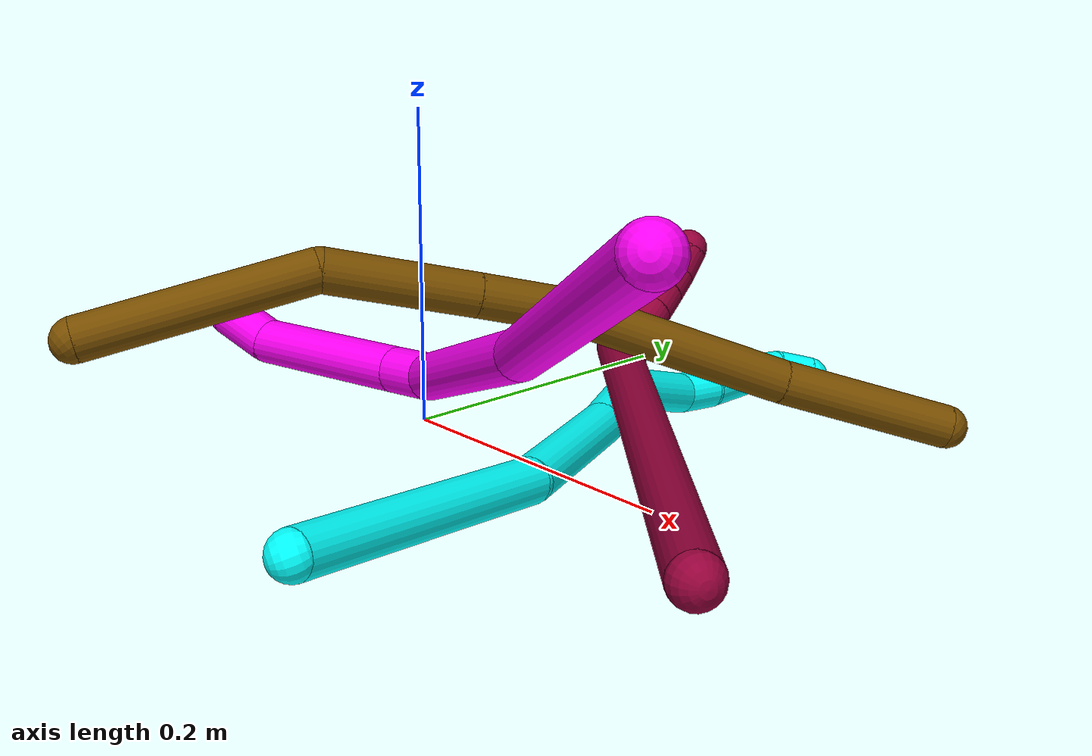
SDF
<sdf version="1.7">
 <world name="default">
  <model name="3">
   <static>0</static>
   <link name="3">
    <collision name="collision-cylinder-e_1_1_4">
     <pose>0.025781 0.053803 0.057916 -0.748597 0.315257 -0.124712</pose>
     <geometry><cylinder><radius>0.0125</radius><length>0.166297</length></cylinder></geometry>
     <surface>
      <friction><ode><mu>1.16</mu><mu2>1.16</mu2><slip1>0</slip1><slip2>0</slip2></ode></friction>
      <contact><ode><kp>1e+06</kp><kd>1</kd><max_vel>0</max_vel><min_depth>0.001</min_depth></ode></contact>
     </surface>
    </collision>
    <visual name="visual-cylinder-e_1_1_4">
     <pose>0.025781 0.053803 0.057916 -0.748597 0.315257 -0.124712</pose>
     <geometry><cylinder><radius>0.0125</radius><length>0.166297</length></cylinder></geometry>
     <material><ambient>0.003922 1 0.996078 1</ambient></material>
    </visual>
    <collision name="collision-cylinder-e_2_4_5">
     <pose>0.061353 0.151667 0.144162 -0.999385 0.184771 -0.101069</pose>
     <geometry><cylinder><radius>0.0125</radius><length>0.106579</length></cylinder></geometry>
     <surface>
      <friction><ode><mu>1.16</mu><mu2>1.16</mu2><slip1>0</slip1><slip2>0</slip2></ode></friction>
      <contact><ode><kp>1e+06</kp><kd>1</kd><max_vel>0</max_vel><min_depth>0.001</min_depth></ode></contact>
     </surface>
    </collision>
    <visual name="visual-cylinder-e_2_4_5">
     <pose>0.061353 0.151667 0.144162 -0.999385 0.184771 -0.101069</pose>
     <geometry><cylinder><radius>0.0125</radius><length>0.106579</length></cylinder></geometry>
     <material><ambient>0.003922 1 0.996078 1</ambient></material>
    </visual>
    <collision name="collision-cylinder-e_3_5_6">
     <pose>0.073161 0.211985 0.182049 -1.03932 0.106577 -0.061012</pose>
     <geometry><cylinder><radius>0.0125</radius><length>0.037933</length></cylinder></geometry>
     <surface>
      <friction><ode><mu>1.16</mu><mu2>1.16</mu2><slip1>0</slip1><slip2>0</slip2></ode></friction>
      <contact><ode><kp>1e+06</kp><kd>1</kd><max_vel>0</max_vel><min_depth>0.001</min_depth></ode></contact>
     </surface>
    </collision>
    <visual name="visual-cylinder-e_3_5_6">
     <pose>0.073161 0.211985 0.182049 -1.03932 0.106577 -0.061012</pose>
     <geometry><cylinder><radius>0.0125</radius><length>0.037933</length></cylinder></geometry>
     <material><ambient>0.003922 1 0.996078 1</ambient></material>
    </visual>
    <collision name="collision-cylinder-e_4_6_7">
     <pose>0.076541 0.239226 0.198073 -1.03873 0.106517 -0.060937</pose>
     <geometry><cylinder><radius>0.0125</radius><length>0.025636</length></cylinder></geometry>
     <surface>
      <friction><ode><mu>1.16</mu><mu2>1.16</mu2><slip1>0</slip1><slip2>0</slip2></ode></friction>
      <contact><ode><kp>1e+06</kp><kd>1</kd><max_vel>0</max_vel><min_depth>0.001</min_depth></ode></contact>
     </surface>
    </collision>
    <visual name="visual-cylinder-e_4_6_7">
     <pose>0.076541 0.239226 0.198073 -1.03873 0.106517 -0.060937</pose>
     <geometry><cylinder><radius>0.0125</radius><length>0.025636</length></cylinder></geometry>
     <material><ambient>0.003922 1 0.996078 1</ambient></material>
    </visual>
    <collision name="collision-cylinder-e_5_7_8">
     <pose>0.09151 0.267252 0.221883 -0.776621 0.51014 -0.212532</pose>
     <geometry><cylinder><radius>0.0125</radius><length>0.055728</length></cylinder></geometry>
     <surface>
      <friction><ode><mu>1.16</mu><mu2>1.16</mu2><slip1>0</slip1><slip2>0</slip2></ode></friction>
      <contact><ode><kp>1e+06</kp><kd>1</kd><max_vel>0</max_vel><min_depth>0.001</min_depth></ode></contact>
     </surface>
    </collision>
    <visual name="visual-cylinder-e_5_7_8">
     <pose>0.09151 0.267252 0.221883 -0.776621 0.51014 -0.212532</pose>
     <geometry><cylinder><radius>0.0125</radius><length>0.055728</length></cylinder></geometry>
     <material><ambient>0.003922 1 0.996078 1</ambient></material>
    </visual>
    <collision name="collision-cylinder-e_6_8_9">
     <pose>0.108845 0.288999 0.249941 -0.413748 0.308571 -0.065258</pose>
     <geometry><cylinder><radius>0.0125</radius><length>0.024561</length></cylinder></geometry>
     <surface>
      <friction><ode><mu>1.16</mu><mu2>1.16</mu2><slip1>0</slip1><slip2>0</slip2></ode></friction>
      <contact><ode><kp>1e+06</kp><kd>1</kd><max_vel>0</max_vel><min_depth>0.001</min_depth></ode></contact>
     </surface>
    </collision>
    <visual name="visual-cylinder-e_6_8_9">
     <pose>0.108845 0.288999 0.249941 -0.413748 0.308571 -0.065258</pose>
     <geometry><cylinder><radius>0.0125</radius><length>0.024561</length></cylinder></geometry>
     <material><ambient>0.003922 1 0.996078 1</ambient></material>
    </visual>
    <collision name="collision-cylinder-e_7_9_10">
     <pose>0.117328 0.30428 0.277378 -0.563961 0.235746 -0.068587</pose>
     <geometry><cylinder><radius>0.0125</radius><length>0.040702</length></cylinder></geometry>
     <surface>
      <friction><ode><mu>1.16</mu><mu2>1.16</mu2><slip1>0</slip1><slip2>0</slip2></ode></friction>
      <contact><ode><kp>1e+06</kp><kd>1</kd><max_vel>0</max_vel><min_depth>0.001</min_depth></ode></contact>
     </surface>
    </collision>
    <visual name="visual-cylinder-e_7_9_10">
     <pose>0.117328 0.30428 0.277378 -0.563961 0.235746 -0.068587</pose>
     <geometry><cylinder><radius>0.0125</radius><length>0.040702</length></cylinder></geometry>
     <material><ambient>0.003922 1 0.996078 1</ambient></material>
    </visual>
    <collision name="collision-cylinder-e_8_10_11">
     <pose>0.124964 0.316402 0.304203 -0.151695 0.274886 -0.021021</pose>
     <geometry><cylinder><radius>0.0125</radius><length>0.021235</length></cylinder></geometry>
     <surface>
      <friction><ode><mu>1.16</mu><mu2>1.16</mu2><slip1>0</slip1><slip2>0</slip2></ode></friction>
      <contact><ode><kp>1e+06</kp><kd>1</kd><max_vel>0</max_vel><min_depth>0.001</min_depth></ode></contact>
     </surface>
    </collision>
    <visual name="visual-cylinder-e_8_10_11">
     <pose>0.124964 0.316402 0.304203 -0.151695 0.274886 -0.021021</pose>
     <geometry><cylinder><radius>0.0125</radius><length>0.021235</length></cylinder></geometry>
     <material><ambient>0.003922 1 0.996078 1</ambient></material>
    </visual>
    <collision name="collision-cylinder-e_9_11_2">
     <pose>0.133249 0.316374 0.323363 0.171795 0.53137 0.046855</pose>
     <geometry><cylinder><radius>0.0125</radius><length>0.021329</length></cylinder></geometry>
     <surface>
      <friction><ode><mu>1.16</mu><mu2>1.16</mu2><slip1>0</slip1><slip2>0</slip2></ode></friction>
      <contact><ode><kp>1e+06</kp><kd>1</kd><max_vel>0</max_vel><min_depth>0.001</min_depth></ode></contact>
     </surface>
    </collision>
    <visual name="visual-cylinder-e_9_11_2">
     <pose>0.133249 0.316374 0.323363 0.171795 0.53137 0.046855</pose>
     <geometry><cylinder><radius>0.0125</radius><length>0.021329</length></cylinder></geometry>
     <material><ambient>0.003922 1 0.996078 1</ambient></material>
    </visual>
    <collision name="collision-sphere-2">
     <pose>0.138653 0.314802 0.332422 0 -0 0</pose>
     <geometry><sphere><radius>0.0125</radius></sphere></geometry>
     <surface>
      <friction><ode><mu>1.16</mu><mu2>1.16</mu2><slip1>0</slip1><slip2>0</slip2></ode></friction>
      <contact><ode><kp>1e+06</kp><kd>1</kd><max_vel>0</max_vel><min_depth>0.001</min_depth></ode></contact>
     </surface>
    </collision>
    <visual name="visual-sphere-2">
     <pose>0.138653 0.314802 0.332422 0 -0 0</pose>
     <geometry><sphere><radius>0.0125</radius></sphere></geometry>
     <material><ambient>0.003922 1 0.996078 1</ambient></material>
    </visual>
    <collision name="collision-sphere-11">
     <pose>0.127845 0.317946 0.314304 0 -0 0</pose>
     <geometry><sphere><radius>0.0125</radius></sphere></geometry>
     <surface>
      <friction><ode><mu>1.16</mu><mu2>1.16</mu2><slip1>0</slip1><slip2>0</slip2></ode></friction>
      <contact><ode><kp>1e+06</kp><kd>1</kd><max_vel>0</max_vel><min_depth>0.001</min_depth></ode></contact>
     </surface>
    </collision>
    <visual name="visual-sphere-11">
     <pose>0.127845 0.317946 0.314304 0 -0 0</pose>
     <geometry><sphere><radius>0.0125</radius></sphere></geometry>
     <material><ambient>0.003922 1 0.996078 1</ambient></material>
    </visual>
    <collision name="collision-sphere-10">
     <pose>0.122082 0.314858 0.294101 0 -0 0</pose>
     <geometry><sphere><radius>0.0125</radius></sphere></geometry>
     <surface>
      <friction><ode><mu>1.16</mu><mu2>1.16</mu2><slip1>0</slip1><slip2>0</slip2></ode></friction>
      <contact><ode><kp>1e+06</kp><kd>1</kd><max_vel>0</max_vel><min_depth>0.001</min_depth></ode></contact>
     </surface>
    </collision>
    <visual name="visual-sphere-10">
     <pose>0.122082 0.314858 0.294101 0 -0 0</pose>
     <geometry><sphere><radius>0.0125</radius></sphere></geometry>
     <material><ambient>0.003922 1 0.996078 1</ambient></material>
    </visual>
    <collision name="collision-sphere-9">
     <pose>0.112575 0.293703 0.260654 0 -0 0</pose>
     <geometry><sphere><radius>0.0125</radius></sphere></geometry>
     <surface>
      <friction><ode><mu>1.16</mu><mu2>1.16</mu2><slip1>0</slip1><slip2>0</slip2></ode></friction>
      <contact><ode><kp>1e+06</kp><kd>1</kd><max_vel>0</max_vel><min_depth>0.001</min_depth></ode></contact>
     </surface>
    </collision>
    <visual name="visual-sphere-9">
     <pose>0.112575 0.293703 0.260654 0 -0 0</pose>
     <geometry><sphere><radius>0.0125</radius></sphere></geometry>
     <material><ambient>0.003922 1 0.996078 1</ambient></material>
    </visual>
    <collision name="collision-sphere-4">
     <pose>0.051562 0.107606 0.115832 0 -0 0</pose>
     <geometry><sphere><radius>0.0125</radius></sphere></geometry>
     <surface>
      <friction><ode><mu>1.16</mu><mu2>1.16</mu2><slip1>0</slip1><slip2>0</slip2></ode></friction>
      <contact><ode><kp>1e+06</kp><kd>1</kd><max_vel>0</max_vel><min_depth>0.001</min_depth></ode></contact>
     </surface>
    </collision>
    <visual name="visual-sphere-4">
     <pose>0.051562 0.107606 0.115832 0 -0 0</pose>
     <geometry><sphere><radius>0.0125</radius></sphere></geometry>
     <material><ambient>0.003922 1 0.996078 1</ambient></material>
    </visual>
    <collision name="collision-sphere-1">
     <geometry><sphere><radius>0.0125</radius></sphere></geometry>
     <surface>
      <friction><ode><mu>1.16</mu><mu2>1.16</mu2><slip1>0</slip1><slip2>0</slip2></ode></friction>
      <contact><ode><kp>1e+06</kp><kd>1</kd><max_vel>0</max_vel><min_depth>0.001</min_depth></ode></contact>
     </surface>
    </collision>
    <visual name="visual-sphere-1">
     <geometry><sphere><radius>0.0125</radius></sphere></geometry>
     <material><ambient>0.003922 1 0.996078 1</ambient></material>
    </visual>
    <collision name="collision-sphere-8">
     <pose>0.105116 0.284294 0.239227 0 -0 0</pose>
     <geometry><sphere><radius>0.0125</radius></sphere></geometry>
     <surface>
      <friction><ode><mu>1.16</mu><mu2>1.16</mu2><slip1>0</slip1><slip2>0</slip2></ode></friction>
      <contact><ode><kp>1e+06</kp><kd>1</kd><max_vel>0</max_vel><min_depth>0.001</min_depth></ode></contact>
     </surface>
    </collision>
    <visual name="visual-sphere-8">
     <pose>0.105116 0.284294 0.239227 0 -0 0</pose>
     <geometry><sphere><radius>0.0125</radius></sphere></geometry>
     <material><ambient>0.003922 1 0.996078 1</ambient></material>
    </visual>
    <collision name="collision-sphere-5">
     <pose>0.071143 0.195727 0.172491 0 -0 0</pose>
     <geometry><sphere><radius>0.0125</radius></sphere></geometry>
     <surface>
      <friction><ode><mu>1.16</mu><mu2>1.16</mu2><slip1>0</slip1><slip2>0</slip2></ode></friction>
      <contact><ode><kp>1e+06</kp><kd>1</kd><max_vel>0</max_vel><min_depth>0.001</min_depth></ode></contact>
     </surface>
    </collision>
    <visual name="visual-sphere-5">
     <pose>0.071143 0.195727 0.172491 0 -0 0</pose>
     <geometry><sphere><radius>0.0125</radius></sphere></geometry>
     <material><ambient>0.003922 1 0.996078 1</ambient></material>
    </visual>
    <collision name="collision-sphere-6">
     <pose>0.075178 0.228242 0.191607 0 -0 0</pose>
     <geometry><sphere><radius>0.0125</radius></sphere></geometry>
     <surface>
      <friction><ode><mu>1.16</mu><mu2>1.16</mu2><slip1>0</slip1><slip2>0</slip2></ode></friction>
      <contact><ode><kp>1e+06</kp><kd>1</kd><max_vel>0</max_vel><min_depth>0.001</min_depth></ode></contact>
     </surface>
    </collision>
    <visual name="visual-sphere-6">
     <pose>0.075178 0.228242 0.191607 0 -0 0</pose>
     <geometry><sphere><radius>0.0125</radius></sphere></geometry>
     <material><ambient>0.003922 1 0.996078 1</ambient></material>
    </visual>
    <collision name="collision-sphere-7">
     <pose>0.077904 0.250209 0.204538 0 -0 0</pose>
     <geometry><sphere><radius>0.0125</radius></sphere></geometry>
     <surface>
      <friction><ode><mu>1.16</mu><mu2>1.16</mu2><slip1>0</slip1><slip2>0</slip2></ode></friction>
      <contact><ode><kp>1e+06</kp><kd>1</kd><max_vel>0</max_vel><min_depth>0.001</min_depth></ode></contact>
     </surface>
    </collision>
    <visual name="visual-sphere-7">
     <pose>0.077904 0.250209 0.204538 0 -0 0</pose>
     <geometry><sphere><radius>0.0125</radius></sphere></geometry>
     <material><ambient>0.003922 1 0.996078 1</ambient></material>
    </visual>
    <inertial>
     <pose>0.067216 0.174257 0.16026 0 -0 0</pose>
     <mass>0.5</mass>
     <inertia>
      <ixx>0.000455</ixx>
      <ixy>0</ixy>
      <ixz>0</ixz>
      <iyy>0.000344</iyy>
      <iyz>0</iyz>
      <izz>-0.000488</izz>
     </inertia>
    </inertial>
   </link>
   <pose>0.222921 -0.244824 0.057691 -0.139048 1.26301 0.915188</pose>
  </model>
  <model name="8">
   <static>0</static>
   <link name="8">
    <collision name="collision-cylinder-e_1_1_4">
     <pose>-0.044612 0.019162 -0.172809 -3.03116 -0.251169 2.31626</pose>
     <geometry><cylinder><radius>0.0125</radius><length>0.359</length></cylinder></geometry>
     <surface>
      <friction><ode><mu>1.16</mu><mu2>1.16</mu2><slip1>0</slip1><slip2>0</slip2></ode></friction>
      <contact><ode><kp>1e+06</kp><kd>1</kd><max_vel>0</max_vel><min_depth>0.001</min_depth></ode></contact>
     </surface>
    </collision>
    <visual name="visual-cylinder-e_1_1_4">
     <pose>-0.044612 0.019162 -0.172809 -3.03116 -0.251169 2.31626</pose>
     <geometry><cylinder><radius>0.0125</radius><length>0.359</length></cylinder></geometry>
     <material><ambient>0.584314 0 0.227451 1</ambient></material>
    </visual>
    <collision name="collision-cylinder-e_2_4_5">
     <pose>-0.091304 0.043085 -0.354739 -2.66043 -0.199371 0.774214</pose>
     <geometry><cylinder><radius>0.0125</radius><length>0.020995</length></cylinder></geometry>
     <surface>
      <friction><ode><mu>1.16</mu><mu2>1.16</mu2><slip1>0</slip1><slip2>0</slip2></ode></friction>
      <contact><ode><kp>1e+06</kp><kd>1</kd><max_vel>0</max_vel><min_depth>0.001</min_depth></ode></contact>
     </surface>
    </collision>
    <visual name="visual-cylinder-e_2_4_5">
     <pose>-0.091304 0.043085 -0.354739 -2.66043 -0.199371 0.774214</pose>
     <geometry><cylinder><radius>0.0125</radius><length>0.020995</length></cylinder></geometry>
     <material><ambient>0.584314 0 0.227451 1</ambient></material>
    </visual>
    <collision name="collision-cylinder-e_3_5_6">
     <pose>-0.098518 0.052155 -0.371283 -2.61577 -0.539239 1.59723</pose>
     <geometry><cylinder><radius>0.0125</radius><length>0.020003</length></cylinder></geometry>
     <surface>
      <friction><ode><mu>1.16</mu><mu2>1.16</mu2><slip1>0</slip1><slip2>0</slip2></ode></friction>
      <contact><ode><kp>1e+06</kp><kd>1</kd><max_vel>0</max_vel><min_depth>0.001</min_depth></ode></contact>
     </surface>
    </collision>
    <visual name="visual-cylinder-e_3_5_6">
     <pose>-0.098518 0.052155 -0.371283 -2.61577 -0.539239 1.59723</pose>
     <geometry><cylinder><radius>0.0125</radius><length>0.020003</length></cylinder></geometry>
     <material><ambient>0.584314 0 0.227451 1</ambient></material>
    </visual>
    <collision name="collision-cylinder-e_4_6_7">
     <pose>-0.109917 0.056474 -0.386501 -3.14011 -0.676852 3.13737</pose>
     <geometry><cylinder><radius>0.0125</radius><length>0.02</length></cylinder></geometry>
     <surface>
      <friction><ode><mu>1.16</mu><mu2>1.16</mu2><slip1>0</slip1><slip2>0</slip2></ode></friction>
      <contact><ode><kp>1e+06</kp><kd>1</kd><max_vel>0</max_vel><min_depth>0.001</min_depth></ode></contact>
     </surface>
    </collision>
    <visual name="visual-cylinder-e_4_6_7">
     <pose>-0.109917 0.056474 -0.386501 -3.14011 -0.676852 3.13737</pose>
     <geometry><cylinder><radius>0.0125</radius><length>0.02</length></cylinder></geometry>
     <material><ambient>0.584314 0 0.227451 1</ambient></material>
    </visual>
    <collision name="collision-cylinder-e_5_7_8">
     <pose>-0.124184 0.056177 -0.400285 3.09009 -0.927784 -3.03871</pose>
     <geometry><cylinder><radius>0.0125</radius><length>0.020001</length></cylinder></geometry>
     <surface>
      <friction><ode><mu>1.16</mu><mu2>1.16</mu2><slip1>0</slip1><slip2>0</slip2></ode></friction>
      <contact><ode><kp>1e+06</kp><kd>1</kd><max_vel>0</max_vel><min_depth>0.001</min_depth></ode></contact>
     </surface>
    </collision>
    <visual name="visual-cylinder-e_5_7_8">
     <pose>-0.124184 0.056177 -0.400285 3.09009 -0.927784 -3.03871</pose>
     <geometry><cylinder><radius>0.0125</radius><length>0.020001</length></cylinder></geometry>
     <material><ambient>0.584314 0 0.227451 1</ambient></material>
    </visual>
    <collision name="collision-cylinder-e_6_8_9">
     <pose>-0.140187 0.055537 -0.412266 3.08632 -0.927176 -3.03112</pose>
     <geometry><cylinder><radius>0.0125</radius><length>0.02</length></cylinder></geometry>
     <surface>
      <friction><ode><mu>1.16</mu><mu2>1.16</mu2><slip1>0</slip1><slip2>0</slip2></ode></friction>
      <contact><ode><kp>1e+06</kp><kd>1</kd><max_vel>0</max_vel><min_depth>0.001</min_depth></ode></contact>
     </surface>
    </collision>
    <visual name="visual-cylinder-e_6_8_9">
     <pose>-0.140187 0.055537 -0.412266 3.08632 -0.927176 -3.03112</pose>
     <geometry><cylinder><radius>0.0125</radius><length>0.02</length></cylinder></geometry>
     <material><ambient>0.584314 0 0.227451 1</ambient></material>
    </visual>
    <collision name="collision-cylinder-e_7_9_10">
     <pose>-0.156266 0.05458 -0.424117 3.03522 -0.940595 -2.93291</pose>
     <geometry><cylinder><radius>0.0125</radius><length>0.02</length></cylinder></geometry>
     <surface>
      <friction><ode><mu>1.16</mu><mu2>1.16</mu2><slip1>0</slip1><slip2>0</slip2></ode></friction>
      <contact><ode><kp>1e+06</kp><kd>1</kd><max_vel>0</max_vel><min_depth>0.001</min_depth></ode></contact>
     </surface>
    </collision>
    <visual name="visual-cylinder-e_7_9_10">
     <pose>-0.156266 0.05458 -0.424117 3.03522 -0.940595 -2.93291</pose>
     <geometry><cylinder><radius>0.0125</radius><length>0.02</length></cylinder></geometry>
     <material><ambient>0.584314 0 0.227451 1</ambient></material>
    </visual>
    <collision name="collision-cylinder-e_8_10_2">
     <pose>-0.173402 0.050349 -0.432207 2.12483 -1.13306 -1.70275</pose>
     <geometry><cylinder><radius>0.0125</radius><length>0.02</length></cylinder></geometry>
     <surface>
      <friction><ode><mu>1.16</mu><mu2>1.16</mu2><slip1>0</slip1><slip2>0</slip2></ode></friction>
      <contact><ode><kp>1e+06</kp><kd>1</kd><max_vel>0</max_vel><min_depth>0.001</min_depth></ode></contact>
     </surface>
    </collision>
    <visual name="visual-cylinder-e_8_10_2">
     <pose>-0.173402 0.050349 -0.432207 2.12483 -1.13306 -1.70275</pose>
     <geometry><cylinder><radius>0.0125</radius><length>0.02</length></cylinder></geometry>
     <material><ambient>0.584314 0 0.227451 1</ambient></material>
    </visual>
    <collision name="collision-sphere-2">
     <pose>-0.182459 0.046744 -0.434437 0 -0 0</pose>
     <geometry><sphere><radius>0.0125</radius></sphere></geometry>
     <surface>
      <friction><ode><mu>1.16</mu><mu2>1.16</mu2><slip1>0</slip1><slip2>0</slip2></ode></friction>
      <contact><ode><kp>1e+06</kp><kd>1</kd><max_vel>0</max_vel><min_depth>0.001</min_depth></ode></contact>
     </surface>
    </collision>
    <visual name="visual-sphere-2">
     <pose>-0.182459 0.046744 -0.434437 0 -0 0</pose>
     <geometry><sphere><radius>0.0125</radius></sphere></geometry>
     <material><ambient>0.584314 0 0.227451 1</ambient></material>
    </visual>
    <collision name="collision-sphere-10">
     <pose>-0.164345 0.053954 -0.429977 0 -0 0</pose>
     <geometry><sphere><radius>0.0125</radius></sphere></geometry>
     <surface>
      <friction><ode><mu>1.16</mu><mu2>1.16</mu2><slip1>0</slip1><slip2>0</slip2></ode></friction>
      <contact><ode><kp>1e+06</kp><kd>1</kd><max_vel>0</max_vel><min_depth>0.001</min_depth></ode></contact>
     </surface>
    </collision>
    <visual name="visual-sphere-10">
     <pose>-0.164345 0.053954 -0.429977 0 -0 0</pose>
     <geometry><sphere><radius>0.0125</radius></sphere></geometry>
     <material><ambient>0.584314 0 0.227451 1</ambient></material>
    </visual>
    <collision name="collision-sphere-9">
     <pose>-0.148187 0.055205 -0.418258 0 -0 0</pose>
     <geometry><sphere><radius>0.0125</radius></sphere></geometry>
     <surface>
      <friction><ode><mu>1.16</mu><mu2>1.16</mu2><slip1>0</slip1><slip2>0</slip2></ode></friction>
      <contact><ode><kp>1e+06</kp><kd>1</kd><max_vel>0</max_vel><min_depth>0.001</min_depth></ode></contact>
     </surface>
    </collision>
    <visual name="visual-sphere-9">
     <pose>-0.148187 0.055205 -0.418258 0 -0 0</pose>
     <geometry><sphere><radius>0.0125</radius></sphere></geometry>
     <material><ambient>0.584314 0 0.227451 1</ambient></material>
    </visual>
    <collision name="collision-sphere-4">
     <pose>-0.089225 0.038323 -0.345618 0 -0 0</pose>
     <geometry><sphere><radius>0.0125</radius></sphere></geometry>
     <surface>
      <friction><ode><mu>1.16</mu><mu2>1.16</mu2><slip1>0</slip1><slip2>0</slip2></ode></friction>
      <contact><ode><kp>1e+06</kp><kd>1</kd><max_vel>0</max_vel><min_depth>0.001</min_depth></ode></contact>
     </surface>
    </collision>
    <visual name="visual-sphere-4">
     <pose>-0.089225 0.038323 -0.345618 0 -0 0</pose>
     <geometry><sphere><radius>0.0125</radius></sphere></geometry>
     <material><ambient>0.584314 0 0.227451 1</ambient></material>
    </visual>
    <collision name="collision-sphere-1">
     <geometry><sphere><radius>0.0125</radius></sphere></geometry>
     <surface>
      <friction><ode><mu>1.16</mu><mu2>1.16</mu2><slip1>0</slip1><slip2>0</slip2></ode></friction>
      <contact><ode><kp>1e+06</kp><kd>1</kd><max_vel>0</max_vel><min_depth>0.001</min_depth></ode></contact>
     </surface>
    </collision>
    <visual name="visual-sphere-1">
     <geometry><sphere><radius>0.0125</radius></sphere></geometry>
     <material><ambient>0.584314 0 0.227451 1</ambient></material>
    </visual>
    <collision name="collision-sphere-8">
     <pose>-0.132188 0.055868 -0.406274 0 -0 0</pose>
     <geometry><sphere><radius>0.0125</radius></sphere></geometry>
     <surface>
      <friction><ode><mu>1.16</mu><mu2>1.16</mu2><slip1>0</slip1><slip2>0</slip2></ode></friction>
      <contact><ode><kp>1e+06</kp><kd>1</kd><max_vel>0</max_vel><min_depth>0.001</min_depth></ode></contact>
     </surface>
    </collision>
    <visual name="visual-sphere-8">
     <pose>-0.132188 0.055868 -0.406274 0 -0 0</pose>
     <geometry><sphere><radius>0.0125</radius></sphere></geometry>
     <material><ambient>0.584314 0 0.227451 1</ambient></material>
    </visual>
    <collision name="collision-sphere-5">
     <pose>-0.093383 0.047847 -0.36386 0 -0 0</pose>
     <geometry><sphere><radius>0.0125</radius></sphere></geometry>
     <surface>
      <friction><ode><mu>1.16</mu><mu2>1.16</mu2><slip1>0</slip1><slip2>0</slip2></ode></friction>
      <contact><ode><kp>1e+06</kp><kd>1</kd><max_vel>0</max_vel><min_depth>0.001</min_depth></ode></contact>
     </surface>
    </collision>
    <visual name="visual-sphere-5">
     <pose>-0.093383 0.047847 -0.36386 0 -0 0</pose>
     <geometry><sphere><radius>0.0125</radius></sphere></geometry>
     <material><ambient>0.584314 0 0.227451 1</ambient></material>
    </visual>
    <collision name="collision-sphere-6">
     <pose>-0.103654 0.056463 -0.378706 0 -0 0</pose>
     <geometry><sphere><radius>0.0125</radius></sphere></geometry>
     <surface>
      <friction><ode><mu>1.16</mu><mu2>1.16</mu2><slip1>0</slip1><slip2>0</slip2></ode></friction>
      <contact><ode><kp>1e+06</kp><kd>1</kd><max_vel>0</max_vel><min_depth>0.001</min_depth></ode></contact>
     </surface>
    </collision>
    <visual name="visual-sphere-6">
     <pose>-0.103654 0.056463 -0.378706 0 -0 0</pose>
     <geometry><sphere><radius>0.0125</radius></sphere></geometry>
     <material><ambient>0.584314 0 0.227451 1</ambient></material>
    </visual>
    <collision name="collision-sphere-7">
     <pose>-0.116181 0.056486 -0.394297 0 -0 0</pose>
     <geometry><sphere><radius>0.0125</radius></sphere></geometry>
     <surface>
      <friction><ode><mu>1.16</mu><mu2>1.16</mu2><slip1>0</slip1><slip2>0</slip2></ode></friction>
      <contact><ode><kp>1e+06</kp><kd>1</kd><max_vel>0</max_vel><min_depth>0.001</min_depth></ode></contact>
     </surface>
    </collision>
    <visual name="visual-sphere-7">
     <pose>-0.116181 0.056486 -0.394297 0 -0 0</pose>
     <geometry><sphere><radius>0.0125</radius></sphere></geometry>
     <material><ambient>0.584314 0 0.227451 1</ambient></material>
    </visual>
    <inertial>
     <pose>-0.067966 0.028579 -0.236042 0 -0 0</pose>
     <mass>0.5</mass>
     <inertia>
      <ixx>0.000196</ixx>
      <ixy>0</ixy>
      <ixz>0</ixz>
      <iyy>0.005452</iyy>
      <iyz>0</iyz>
      <izz>0.000521</izz>
     </inertia>
    </inertial>
   </link>
   <pose>0.388506 -0.173972 0.082347 -1.4493 0.563894 -1.93778</pose>
  </model>
  <model name="10">
   <static>0</static>
   <link name="10">
    <collision name="collision-cylinder-e_1_1_4">
     <pose>-0.03232 -0.018338 -0.097675 2.95601 -0.314424 -2.0799</pose>
     <geometry><cylinder><radius>0.0125</radius><length>0.209009</length></cylinder></geometry>
     <surface>
      <friction><ode><mu>1.16</mu><mu2>1.16</mu2><slip1>0</slip1><slip2>0</slip2></ode></friction>
      <contact><ode><kp>1e+06</kp><kd>1</kd><max_vel>0</max_vel><min_depth>0.001</min_depth></ode></contact>
     </surface>
    </collision>
    <visual name="visual-cylinder-e_1_1_4">
     <pose>-0.03232 -0.018338 -0.097675 2.95601 -0.314424 -2.0799</pose>
     <geometry><cylinder><radius>0.0125</radius><length>0.209009</length></cylinder></geometry>
     <material><ambient>1 0 0.964706 1</ambient></material>
    </visual>
    <collision name="collision-cylinder-e_2_4_5">
     <pose>-0.096109 -0.045668 -0.254998 2.99197 -0.480841 -2.54819</pose>
     <geometry><cylinder><radius>0.0125</radius><length>0.136076</length></cylinder></geometry>
     <surface>
      <friction><ode><mu>1.16</mu><mu2>1.16</mu2><slip1>0</slip1><slip2>0</slip2></ode></friction>
      <contact><ode><kp>1e+06</kp><kd>1</kd><max_vel>0</max_vel><min_depth>0.001</min_depth></ode></contact>
     </surface>
    </collision>
    <visual name="visual-cylinder-e_2_4_5">
     <pose>-0.096109 -0.045668 -0.254998 2.99197 -0.480841 -2.54819</pose>
     <geometry><cylinder><radius>0.0125</radius><length>0.136076</length></cylinder></geometry>
     <material><ambient>1 0 0.964706 1</ambient></material>
    </visual>
    <collision name="collision-cylinder-e_3_5_6">
     <pose>-0.138642 -0.054242 -0.322783 -3.09014 -0.936098 3.03987</pose>
     <geometry><cylinder><radius>0.0125</radius><length>0.027479</length></cylinder></geometry>
     <surface>
      <friction><ode><mu>1.16</mu><mu2>1.16</mu2><slip1>0</slip1><slip2>0</slip2></ode></friction>
      <contact><ode><kp>1e+06</kp><kd>1</kd><max_vel>0</max_vel><min_depth>0.001</min_depth></ode></contact>
     </surface>
    </collision>
    <visual name="visual-cylinder-e_3_5_6">
     <pose>-0.138642 -0.054242 -0.322783 -3.09014 -0.936098 3.03987</pose>
     <geometry><cylinder><radius>0.0125</radius><length>0.027479</length></cylinder></geometry>
     <material><ambient>1 0 0.964706 1</ambient></material>
    </visual>
    <collision name="collision-cylinder-e_4_6_7">
     <pose>-0.192918 -0.0515 -0.35343 -3.03877 -1.08837 2.97192</pose>
     <geometry><cylinder><radius>0.0125</radius><length>0.097557</length></cylinder></geometry>
     <surface>
      <friction><ode><mu>1.16</mu><mu2>1.16</mu2><slip1>0</slip1><slip2>0</slip2></ode></friction>
      <contact><ode><kp>1e+06</kp><kd>1</kd><max_vel>0</max_vel><min_depth>0.001</min_depth></ode></contact>
     </surface>
    </collision>
    <visual name="visual-cylinder-e_4_6_7">
     <pose>-0.192918 -0.0515 -0.35343 -3.03877 -1.08837 2.97192</pose>
     <geometry><cylinder><radius>0.0125</radius><length>0.097557</length></cylinder></geometry>
     <material><ambient>1 0 0.964706 1</ambient></material>
    </visual>
    <collision name="collision-cylinder-e_5_7_2">
     <pose>-0.249494 -0.043021 -0.378521 -1.96776 -1.10757 1.49794</pose>
     <geometry><cylinder><radius>0.0125</radius><length>0.029878</length></cylinder></geometry>
     <surface>
      <friction><ode><mu>1.16</mu><mu2>1.16</mu2><slip1>0</slip1><slip2>0</slip2></ode></friction>
      <contact><ode><kp>1e+06</kp><kd>1</kd><max_vel>0</max_vel><min_depth>0.001</min_depth></ode></contact>
     </surface>
    </collision>
    <visual name="visual-cylinder-e_5_7_2">
     <pose>-0.249494 -0.043021 -0.378521 -1.96776 -1.10757 1.49794</pose>
     <geometry><cylinder><radius>0.0125</radius><length>0.029878</length></cylinder></geometry>
     <material><ambient>1 0 0.964706 1</ambient></material>
    </visual>
    <collision name="collision-sphere-2">
     <pose>-0.262859 -0.036864 -0.381102 0 -0 0</pose>
     <geometry><sphere><radius>0.0125</radius></sphere></geometry>
     <surface>
      <friction><ode><mu>1.16</mu><mu2>1.16</mu2><slip1>0</slip1><slip2>0</slip2></ode></friction>
      <contact><ode><kp>1e+06</kp><kd>1</kd><max_vel>0</max_vel><min_depth>0.001</min_depth></ode></contact>
     </surface>
    </collision>
    <visual name="visual-sphere-2">
     <pose>-0.262859 -0.036864 -0.381102 0 -0 0</pose>
     <geometry><sphere><radius>0.0125</radius></sphere></geometry>
     <material><ambient>1 0 0.964706 1</ambient></material>
    </visual>
    <collision name="collision-sphere-7">
     <pose>-0.236129 -0.049177 -0.37594 0 -0 0</pose>
     <geometry><sphere><radius>0.0125</radius></sphere></geometry>
     <surface>
      <friction><ode><mu>1.16</mu><mu2>1.16</mu2><slip1>0</slip1><slip2>0</slip2></ode></friction>
      <contact><ode><kp>1e+06</kp><kd>1</kd><max_vel>0</max_vel><min_depth>0.001</min_depth></ode></contact>
     </surface>
    </collision>
    <visual name="visual-sphere-7">
     <pose>-0.236129 -0.049177 -0.37594 0 -0 0</pose>
     <geometry><sphere><radius>0.0125</radius></sphere></geometry>
     <material><ambient>1 0 0.964706 1</ambient></material>
    </visual>
    <collision name="collision-sphere-6">
     <pose>-0.149706 -0.053823 -0.330919 0 -0 0</pose>
     <geometry><sphere><radius>0.0125</radius></sphere></geometry>
     <surface>
      <friction><ode><mu>1.16</mu><mu2>1.16</mu2><slip1>0</slip1><slip2>0</slip2></ode></friction>
      <contact><ode><kp>1e+06</kp><kd>1</kd><max_vel>0</max_vel><min_depth>0.001</min_depth></ode></contact>
     </surface>
    </collision>
    <visual name="visual-sphere-6">
     <pose>-0.149706 -0.053823 -0.330919 0 -0 0</pose>
     <geometry><sphere><radius>0.0125</radius></sphere></geometry>
     <material><ambient>1 0 0.964706 1</ambient></material>
    </visual>
    <collision name="collision-sphere-5">
     <pose>-0.127579 -0.054661 -0.314648 0 -0 0</pose>
     <geometry><sphere><radius>0.0125</radius></sphere></geometry>
     <surface>
      <friction><ode><mu>1.16</mu><mu2>1.16</mu2><slip1>0</slip1><slip2>0</slip2></ode></friction>
      <contact><ode><kp>1e+06</kp><kd>1</kd><max_vel>0</max_vel><min_depth>0.001</min_depth></ode></contact>
     </surface>
    </collision>
    <visual name="visual-sphere-5">
     <pose>-0.127579 -0.054661 -0.314648 0 -0 0</pose>
     <geometry><sphere><radius>0.0125</radius></sphere></geometry>
     <material><ambient>1 0 0.964706 1</ambient></material>
    </visual>
    <collision name="collision-sphere-1">
     <geometry><sphere><radius>0.0125</radius></sphere></geometry>
     <surface>
      <friction><ode><mu>1.16</mu><mu2>1.16</mu2><slip1>0</slip1><slip2>0</slip2></ode></friction>
      <contact><ode><kp>1e+06</kp><kd>1</kd><max_vel>0</max_vel><min_depth>0.001</min_depth></ode></contact>
     </surface>
    </collision>
    <visual name="visual-sphere-1">
     <geometry><sphere><radius>0.0125</radius></sphere></geometry>
     <material><ambient>1 0 0.964706 1</ambient></material>
    </visual>
    <collision name="collision-sphere-4">
     <pose>-0.06464 -0.036676 -0.195349 0 -0 0</pose>
     <geometry><sphere><radius>0.0125</radius></sphere></geometry>
     <surface>
      <friction><ode><mu>1.16</mu><mu2>1.16</mu2><slip1>0</slip1><slip2>0</slip2></ode></friction>
      <contact><ode><kp>1e+06</kp><kd>1</kd><max_vel>0</max_vel><min_depth>0.001</min_depth></ode></contact>
     </surface>
    </collision>
    <visual name="visual-sphere-4">
     <pose>-0.06464 -0.036676 -0.195349 0 -0 0</pose>
     <geometry><sphere><radius>0.0125</radius></sphere></geometry>
     <material><ambient>1 0 0.964706 1</ambient></material>
    </visual>
    <inertial>
     <pose>-0.099836 -0.035695 -0.219546 0 -0 0</pose>
     <mass>0.5</mass>
     <inertia>
      <ixx>-0.001311</ixx>
      <ixy>0</ixy>
      <ixz>0</ixz>
      <iyy>-6.2e-05</iyy>
      <iyz>0</iyz>
      <izz>0.000543</izz>
     </inertia>
    </inertial>
   </link>
   <pose>0.41075 -0.224696 0.220314 1.23986 0.100947 0.668485</pose>
  </model>
  <model name="12">
   <static>0</static>
   <link name="12">
    <collision name="collision-cylinder-e_1_1_4">
     <pose>0.013857 0.021846 0.059414 -0.352349 0.215493 -0.038506</pose>
     <geometry><cylinder><radius>0.0125</radius><length>0.129604</length></cylinder></geometry>
     <surface>
      <friction><ode><mu>1.16</mu><mu2>1.16</mu2><slip1>0</slip1><slip2>0</slip2></ode></friction>
      <contact><ode><kp>1e+06</kp><kd>1</kd><max_vel>0</max_vel><min_depth>0.001</min_depth></ode></contact>
     </surface>
    </collision>
    <visual name="visual-cylinder-e_1_1_4">
     <pose>0.013857 0.021846 0.059414 -0.352349 0.215493 -0.038506</pose>
     <geometry><cylinder><radius>0.0125</radius><length>0.129604</length></cylinder></geometry>
     <material><ambient>0.466667 0.301961 0 1</ambient></material>
    </visual>
    <collision name="collision-cylinder-e_2_4_5">
     <pose>0.042013 0.072985 0.147471 -0.796623 0.335813 -0.142413</pose>
     <geometry><cylinder><radius>0.0125</radius><length>0.086785</length></cylinder></geometry>
     <surface>
      <friction><ode><mu>1.16</mu><mu2>1.16</mu2><slip1>0</slip1><slip2>0</slip2></ode></friction>
      <contact><ode><kp>1e+06</kp><kd>1</kd><max_vel>0</max_vel><min_depth>0.001</min_depth></ode></contact>
     </surface>
    </collision>
    <visual name="visual-cylinder-e_2_4_5">
     <pose>0.042013 0.072985 0.147471 -0.796623 0.335813 -0.142413</pose>
     <geometry><cylinder><radius>0.0125</radius><length>0.086785</length></cylinder></geometry>
     <material><ambient>0.466667 0.301961 0 1</ambient></material>
    </visual>
    <collision name="collision-cylinder-e_3_5_6">
     <pose>0.064654 0.120178 0.193213 -0.808257 0.325046 -0.140019</pose>
     <geometry><cylinder><radius>0.0125</radius><length>0.052245</length></cylinder></geometry>
     <surface>
      <friction><ode><mu>1.16</mu><mu2>1.16</mu2><slip1>0</slip1><slip2>0</slip2></ode></friction>
      <contact><ode><kp>1e+06</kp><kd>1</kd><max_vel>0</max_vel><min_depth>0.001</min_depth></ode></contact>
     </surface>
    </collision>
    <visual name="visual-cylinder-e_3_5_6">
     <pose>0.064654 0.120178 0.193213 -0.808257 0.325046 -0.140019</pose>
     <geometry><cylinder><radius>0.0125</radius><length>0.052245</length></cylinder></geometry>
     <material><ambient>0.466667 0.301961 0 1</ambient></material>
    </visual>
    <collision name="collision-cylinder-e_4_6_7">
     <pose>0.101658 0.185181 0.244932 -0.936977 0.455851 -0.233701</pose>
     <geometry><cylinder><radius>0.0125</radius><length>0.130212</length></cylinder></geometry>
     <surface>
      <friction><ode><mu>1.16</mu><mu2>1.16</mu2><slip1>0</slip1><slip2>0</slip2></ode></friction>
      <contact><ode><kp>1e+06</kp><kd>1</kd><max_vel>0</max_vel><min_depth>0.001</min_depth></ode></contact>
     </surface>
    </collision>
    <visual name="visual-cylinder-e_4_6_7">
     <pose>0.101658 0.185181 0.244932 -0.936977 0.455851 -0.233701</pose>
     <geometry><cylinder><radius>0.0125</radius><length>0.130212</length></cylinder></geometry>
     <material><ambient>0.466667 0.301961 0 1</ambient></material>
    </visual>
    <collision name="collision-cylinder-e_5_7_2">
     <pose>0.154043 0.266299 0.308505 -0.865629 0.488221 -0.229156</pose>
     <geometry><cylinder><radius>0.0125</radius><length>0.101154</length></cylinder></geometry>
     <surface>
      <friction><ode><mu>1.16</mu><mu2>1.16</mu2><slip1>0</slip1><slip2>0</slip2></ode></friction>
      <contact><ode><kp>1e+06</kp><kd>1</kd><max_vel>0</max_vel><min_depth>0.001</min_depth></ode></contact>
     </surface>
    </collision>
    <visual name="visual-cylinder-e_5_7_2">
     <pose>0.154043 0.266299 0.308505 -0.865629 0.488221 -0.229156</pose>
     <geometry><cylinder><radius>0.0125</radius><length>0.101154</length></cylinder></geometry>
     <material><ambient>0.466667 0.301961 0 1</ambient></material>
    </visual>
    <collision name="collision-sphere-2">
     <pose>0.177766 0.300314 0.337457 0 -0 0</pose>
     <geometry><sphere><radius>0.0125</radius></sphere></geometry>
     <surface>
      <friction><ode><mu>1.16</mu><mu2>1.16</mu2><slip1>0</slip1><slip2>0</slip2></ode></friction>
      <contact><ode><kp>1e+06</kp><kd>1</kd><max_vel>0</max_vel><min_depth>0.001</min_depth></ode></contact>
     </surface>
    </collision>
    <visual name="visual-sphere-2">
     <pose>0.177766 0.300314 0.337457 0 -0 0</pose>
     <geometry><sphere><radius>0.0125</radius></sphere></geometry>
     <material><ambient>0.466667 0.301961 0 1</ambient></material>
    </visual>
    <collision name="collision-sphere-7">
     <pose>0.130319 0.232284 0.279553 0 -0 0</pose>
     <geometry><sphere><radius>0.0125</radius></sphere></geometry>
     <surface>
      <friction><ode><mu>1.16</mu><mu2>1.16</mu2><slip1>0</slip1><slip2>0</slip2></ode></friction>
      <contact><ode><kp>1e+06</kp><kd>1</kd><max_vel>0</max_vel><min_depth>0.001</min_depth></ode></contact>
     </surface>
    </collision>
    <visual name="visual-sphere-7">
     <pose>0.130319 0.232284 0.279553 0 -0 0</pose>
     <geometry><sphere><radius>0.0125</radius></sphere></geometry>
     <material><ambient>0.466667 0.301961 0 1</ambient></material>
    </visual>
    <collision name="collision-sphere-6">
     <pose>0.072997 0.138077 0.210312 0 -0 0</pose>
     <geometry><sphere><radius>0.0125</radius></sphere></geometry>
     <surface>
      <friction><ode><mu>1.16</mu><mu2>1.16</mu2><slip1>0</slip1><slip2>0</slip2></ode></friction>
      <contact><ode><kp>1e+06</kp><kd>1</kd><max_vel>0</max_vel><min_depth>0.001</min_depth></ode></contact>
     </surface>
    </collision>
    <visual name="visual-sphere-6">
     <pose>0.072997 0.138077 0.210312 0 -0 0</pose>
     <geometry><sphere><radius>0.0125</radius></sphere></geometry>
     <material><ambient>0.466667 0.301961 0 1</ambient></material>
    </visual>
    <collision name="collision-sphere-5">
     <pose>0.056312 0.102278 0.176113 0 -0 0</pose>
     <geometry><sphere><radius>0.0125</radius></sphere></geometry>
     <surface>
      <friction><ode><mu>1.16</mu><mu2>1.16</mu2><slip1>0</slip1><slip2>0</slip2></ode></friction>
      <contact><ode><kp>1e+06</kp><kd>1</kd><max_vel>0</max_vel><min_depth>0.001</min_depth></ode></contact>
     </surface>
    </collision>
    <visual name="visual-sphere-5">
     <pose>0.056312 0.102278 0.176113 0 -0 0</pose>
     <geometry><sphere><radius>0.0125</radius></sphere></geometry>
     <material><ambient>0.466667 0.301961 0 1</ambient></material>
    </visual>
    <collision name="collision-sphere-1">
     <geometry><sphere><radius>0.0125</radius></sphere></geometry>
     <surface>
      <friction><ode><mu>1.16</mu><mu2>1.16</mu2><slip1>0</slip1><slip2>0</slip2></ode></friction>
      <contact><ode><kp>1e+06</kp><kd>1</kd><max_vel>0</max_vel><min_depth>0.001</min_depth></ode></contact>
     </surface>
    </collision>
    <visual name="visual-sphere-1">
     <geometry><sphere><radius>0.0125</radius></sphere></geometry>
     <material><ambient>0.466667 0.301961 0 1</ambient></material>
    </visual>
    <collision name="collision-sphere-4">
     <pose>0.027713 0.043692 0.118828 0 -0 0</pose>
     <geometry><sphere><radius>0.0125</radius></sphere></geometry>
     <surface>
      <friction><ode><mu>1.16</mu><mu2>1.16</mu2><slip1>0</slip1><slip2>0</slip2></ode></friction>
      <contact><ode><kp>1e+06</kp><kd>1</kd><max_vel>0</max_vel><min_depth>0.001</min_depth></ode></contact>
     </surface>
    </collision>
    <visual name="visual-sphere-4">
     <pose>0.027713 0.043692 0.118828 0 -0 0</pose>
     <geometry><sphere><radius>0.0125</radius></sphere></geometry>
     <material><ambient>0.466667 0.301961 0 1</ambient></material>
    </visual>
    <inertial>
     <pose>0.075278 0.132988 0.187385 0 -0 0</pose>
     <mass>0.5</mass>
     <inertia>
      <ixx>0.000432</ixx>
      <ixy>0</ixy>
      <ixz>0</ixz>
      <iyy>0.000366</iyy>
      <iyz>0</iyz>
      <izz>-0.000471</izz>
     </inertia>
    </inertial>
   </link>
   <pose>0.022966 -0.242335 0.107514 -0.947735 0.18231 -0.197498</pose>
  </model>
 </world>
</sdf>
